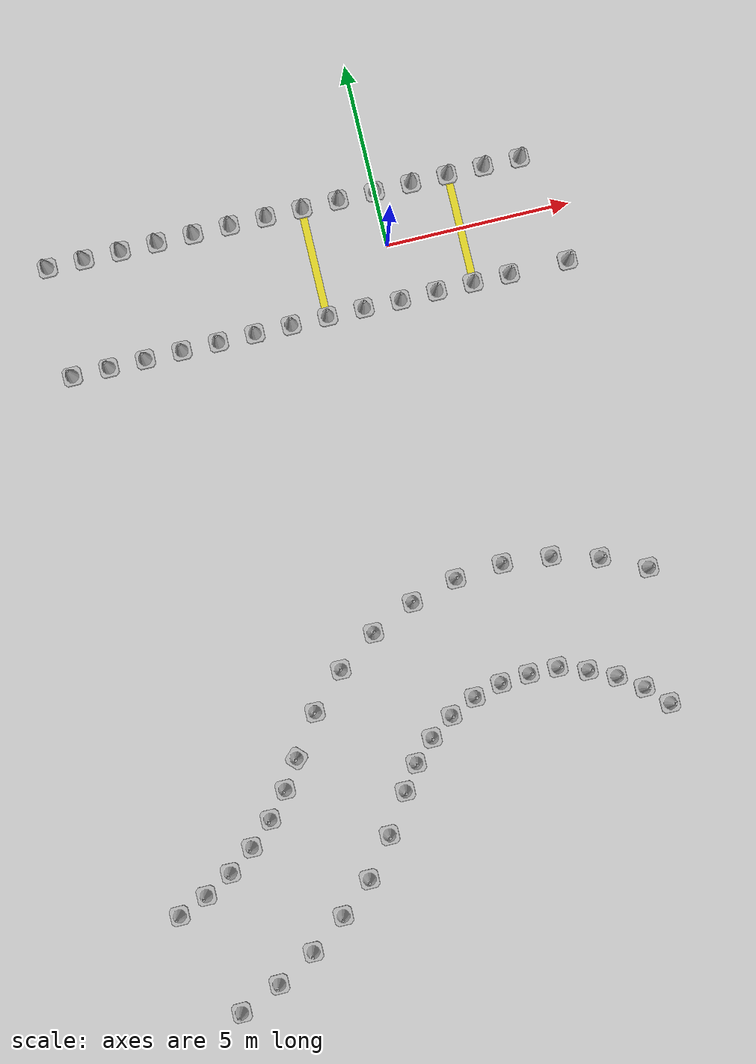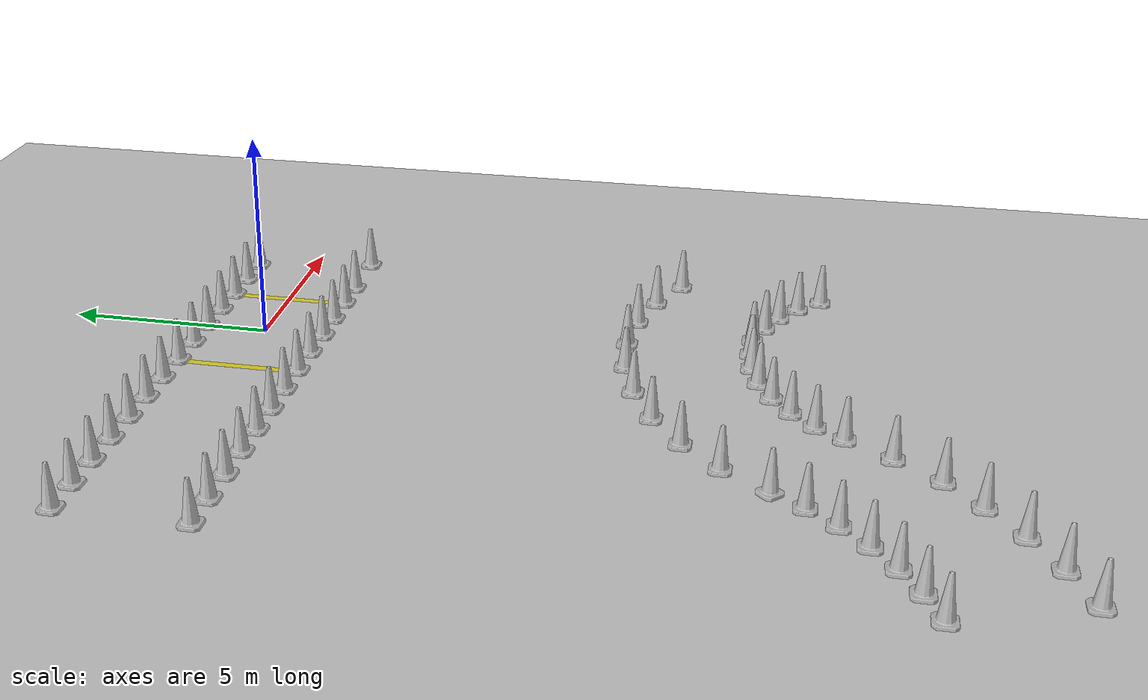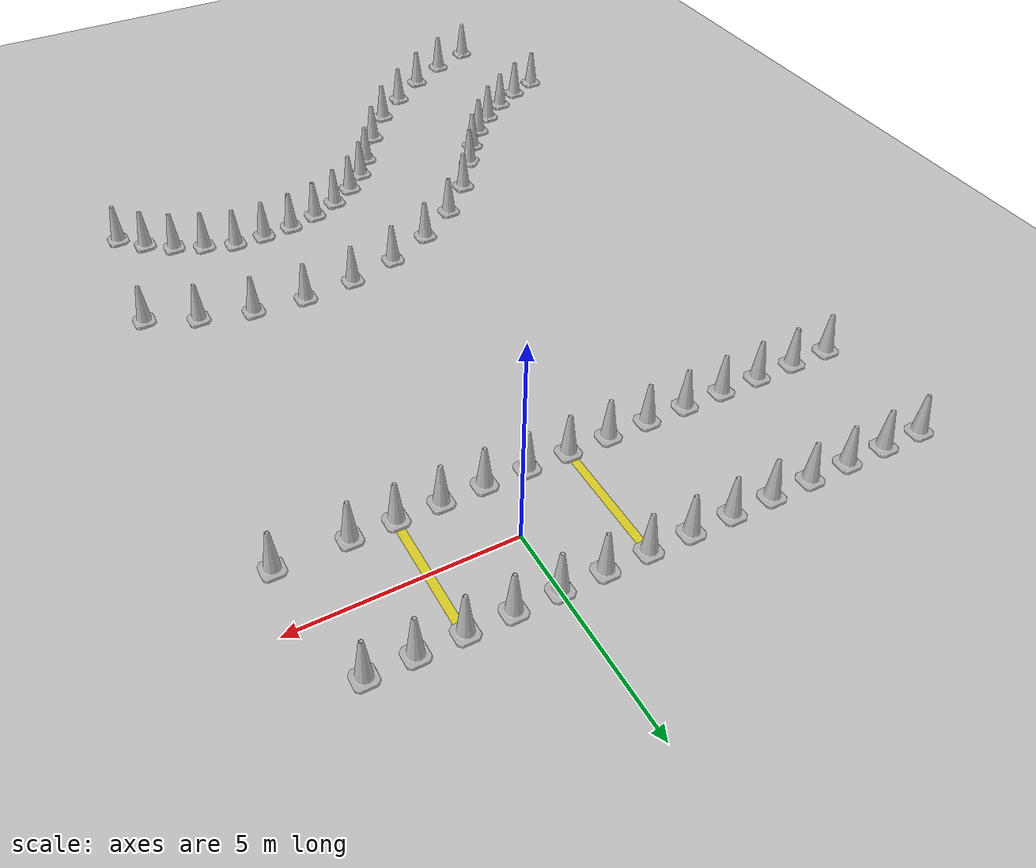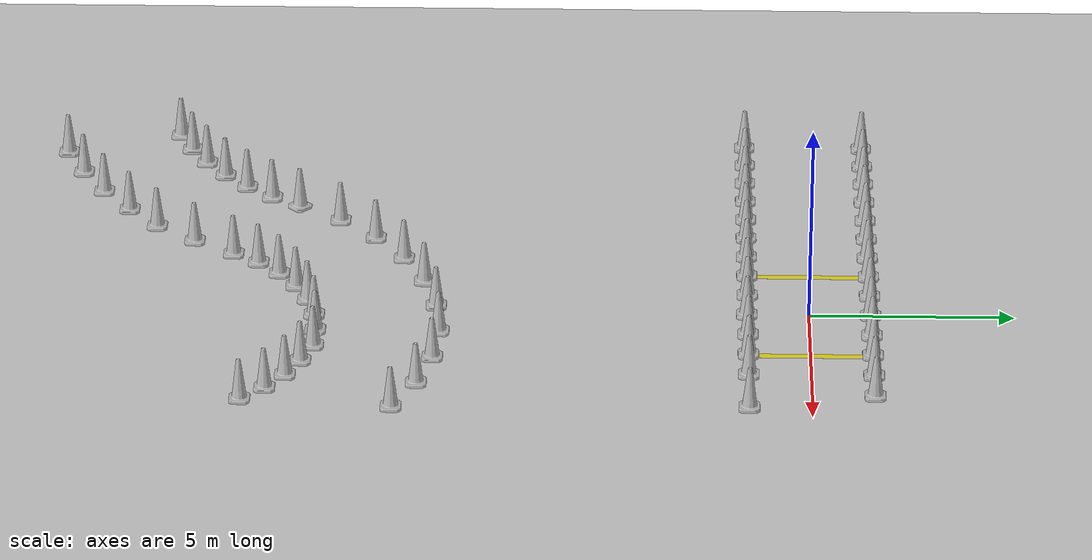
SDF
<sdf version="1.7">
 <world name="default">
  <model name="ground_plane">
   <static>1</static>
   <link name="link">
    <collision name="collision">
     <geometry><plane><normal>0 0 1</normal><size>100 100</size></plane></geometry>
     <surface><friction><ode><mu>100</mu><mu2>50</mu2></ode></friction></surface>
    </collision>
    <visual name="visual">
     <cast_shadows>0</cast_shadows>
     <geometry><plane><normal>0 0 1</normal><size>100 100</size></plane></geometry>
     <material>
      <script><uri>file://media/materials/scripts/gazebo.material</uri><name>Gazebo/Grey</name></script>
     </material>
    </visual>
   </link>
  </model>
  <model name="Construction Cone_clone_7">
   <link name="link">
    <collision name="collision">
     <geometry>
      <mesh><scale>10 10 10</scale><uri>model://construction_cone/meshes/construction_cone.dae</uri></mesh>
     </geometry>
    </collision>
    <visual name="visual">
     <geometry>
      <mesh><scale>10 10 10</scale><uri>model://construction_cone/meshes/construction_cone.dae</uri></mesh>
     </geometry>
    </visual>
    <inertial>
     <inertia><ixx>1</ixx><ixy>0</ixy><ixz>0</ixz><iyy>1</iyy><iyz>0</iyz><izz>1</izz></inertia>
     <mass>1</mass>
    </inertial>
   </link>
   <pose>4.6 -1.5 -0 -0 -0 -0</pose>
  </model>
  <model name="Construction Cone_clone_25">
   <link name="link">
    <collision name="collision">
     <geometry>
      <mesh><scale>10 10 10</scale><uri>model://construction_cone/meshes/construction_cone.dae</uri></mesh>
     </geometry>
    </collision>
    <visual name="visual">
     <geometry>
      <mesh><scale>10 10 10</scale><uri>model://construction_cone/meshes/construction_cone.dae</uri></mesh>
     </geometry>
    </visual>
    <inertial>
     <inertia><ixx>1</ixx><ixy>0</ixy><ixz>0</ixz><iyy>1</iyy><iyz>0</iyz><izz>1</izz></inertia>
     <mass>1</mass>
    </inertial>
   </link>
   <pose>4.73996 -9.99998 -0 -0 -0 -0.001118</pose>
  </model>
  <model name="Construction Cone_clone_27">
   <link name="link">
    <collision name="collision">
     <geometry>
      <mesh><scale>10 10 10</scale><uri>model://construction_cone/meshes/construction_cone.dae</uri></mesh>
     </geometry>
    </collision>
    <visual name="visual">
     <geometry>
      <mesh><scale>10 10 10</scale><uri>model://construction_cone/meshes/construction_cone.dae</uri></mesh>
     </geometry>
    </visual>
    <inertial>
     <inertia><ixx>1</ixx><ixy>0</ixy><ixz>0</ixz><iyy>1</iyy><iyz>0</iyz><izz>1</izz></inertia>
     <mass>1</mass>
    </inertial>
   </link>
   <pose>3.56 -9.45 -0 0 -1e-06 0</pose>
  </model>
  <model name="Construction Cone_clone_29">
   <link name="link">
    <collision name="collision">
     <geometry>
      <mesh><scale>10 10 10</scale><uri>model://construction_cone/meshes/construction_cone.dae</uri></mesh>
     </geometry>
    </collision>
    <visual name="visual">
     <geometry>
      <mesh><scale>10 10 10</scale><uri>model://construction_cone/meshes/construction_cone.dae</uri></mesh>
     </geometry>
    </visual>
    <inertial>
     <inertia><ixx>1</ixx><ixy>0</ixy><ixz>0</ixz><iyy>1</iyy><iyz>0</iyz><izz>1</izz></inertia>
     <mass>1</mass>
    </inertial>
   </link>
   <pose>2.29 -9.11 -0 -0 -0 -0</pose>
  </model>
  <model name="Construction Cone_clone_32">
   <link name="link">
    <collision name="collision">
     <geometry>
      <mesh><scale>10 10 10</scale><uri>model://construction_cone/meshes/construction_cone.dae</uri></mesh>
     </geometry>
    </collision>
    <visual name="visual">
     <geometry>
      <mesh><scale>10 10 10</scale><uri>model://construction_cone/meshes/construction_cone.dae</uri></mesh>
     </geometry>
    </visual>
    <inertial>
     <inertia><ixx>1</ixx><ixy>0</ixy><ixz>0</ixz><iyy>1</iyy><iyz>0</iyz><izz>1</izz></inertia>
     <mass>1</mass>
    </inertial>
   </link>
   <pose>-0.31 -9.11 -0 -0 -0 -0</pose>
  </model>
  <model name="Construction Cone_clone_33">
   <link name="link">
    <collision name="collision">
     <geometry>
      <mesh><scale>10 10 10</scale><uri>model://construction_cone/meshes/construction_cone.dae</uri></mesh>
     </geometry>
    </collision>
    <visual name="visual">
     <geometry>
      <mesh><scale>10 10 10</scale><uri>model://construction_cone/meshes/construction_cone.dae</uri></mesh>
     </geometry>
    </visual>
    <inertial>
     <inertia><ixx>1</ixx><ixy>0</ixy><ixz>0</ixz><iyy>1</iyy><iyz>0</iyz><izz>1</izz></inertia>
     <mass>1</mass>
    </inertial>
   </link>
   <pose>0.99 -9 -0 -0 -0 -0</pose>
  </model>
  <model name="Construction Cone_clone_35">
   <link name="link">
    <collision name="collision">
     <geometry>
      <mesh><scale>10 10 10</scale><uri>model://construction_cone/meshes/construction_cone.dae</uri></mesh>
     </geometry>
    </collision>
    <visual name="visual">
     <geometry>
      <mesh><scale>10 10 10</scale><uri>model://construction_cone/meshes/construction_cone.dae</uri></mesh>
     </geometry>
    </visual>
    <inertial>
     <inertia><ixx>1</ixx><ixy>0</ixy><ixz>0</ixz><iyy>1</iyy><iyz>0</iyz><izz>1</izz></inertia>
     <mass>1</mass>
    </inertial>
   </link>
   <pose>-1.57 -9.45 -0 -0 -0 -0</pose>
  </model>
  <model name="Construction Cone_clone_37">
   <link name="link">
    <collision name="collision">
     <geometry>
      <mesh><scale>10 10 10</scale><uri>model://construction_cone/meshes/construction_cone.dae</uri></mesh>
     </geometry>
    </collision>
    <visual name="visual">
     <geometry>
      <mesh><scale>10 10 10</scale><uri>model://construction_cone/meshes/construction_cone.dae</uri></mesh>
     </geometry>
    </visual>
    <inertial>
     <inertia><ixx>1</ixx><ixy>0</ixy><ixz>0</ixz><iyy>1</iyy><iyz>0</iyz><izz>1</izz></inertia>
     <mass>1</mass>
    </inertial>
   </link>
   <pose>-2.76 -10 -0 -0 -0 -0</pose>
  </model>
  <model name="Construction Cone_clone_38">
   <link name="link">
    <collision name="collision">
     <geometry>
      <mesh><scale>10 10 10</scale><uri>model://construction_cone/meshes/construction_cone.dae</uri></mesh>
     </geometry>
    </collision>
    <visual name="visual">
     <geometry>
      <mesh><scale>10 10 10</scale><uri>model://construction_cone/meshes/construction_cone.dae</uri></mesh>
     </geometry>
    </visual>
    <inertial>
     <inertia><ixx>1</ixx><ixy>0</ixy><ixz>0</ixz><iyy>1</iyy><iyz>0</iyz><izz>1</izz></inertia>
     <mass>1</mass>
    </inertial>
   </link>
   <pose>-4.75 -11.68 -9e-06 1e-06 -0 0</pose>
  </model>
  <model name="Construction Cone_clone_39">
   <link name="link">
    <collision name="collision">
     <geometry>
      <mesh><scale>10 10 10</scale><uri>model://construction_cone/meshes/construction_cone.dae</uri></mesh>
     </geometry>
    </collision>
    <visual name="visual">
     <geometry>
      <mesh><scale>10 10 10</scale><uri>model://construction_cone/meshes/construction_cone.dae</uri></mesh>
     </geometry>
    </visual>
    <inertial>
     <inertia><ixx>1</ixx><ixy>0</ixy><ixz>0</ixz><iyy>1</iyy><iyz>0</iyz><izz>1</izz></inertia>
     <mass>1</mass>
    </inertial>
   </link>
   <pose>-6.54 -14.15 -0 -0 -0 -0</pose>
  </model>
  <model name="Construction Cone_clone_50">
   <link name="link">
    <collision name="collision">
     <geometry>
      <mesh><scale>10 10 10</scale><uri>model://construction_cone/meshes/construction_cone.dae</uri></mesh>
     </geometry>
    </collision>
    <visual name="visual">
     <geometry>
      <mesh><scale>10 10 10</scale><uri>model://construction_cone/meshes/construction_cone.dae</uri></mesh>
     </geometry>
    </visual>
    <inertial>
     <inertia><ixx>1</ixx><ixy>0</ixy><ixz>0</ixz><iyy>1</iyy><iyz>0</iyz><izz>1</izz></inertia>
     <mass>1</mass>
    </inertial>
   </link>
   <pose>-3.83 -10.75 -0 -0 -0 -0</pose>
  </model>
  <model name="Construction Cone_clone_61">
   <link name="link">
    <collision name="collision">
     <geometry>
      <mesh><scale>10 10 10</scale><uri>model://construction_cone/meshes/construction_cone.dae</uri></mesh>
     </geometry>
    </collision>
    <visual name="visual">
     <geometry>
      <mesh><scale>10 10 10</scale><uri>model://construction_cone/meshes/construction_cone.dae</uri></mesh>
     </geometry>
    </visual>
    <inertial>
     <inertia><ixx>1</ixx><ixy>0</ixy><ixz>0</ixz><iyy>1</iyy><iyz>0</iyz><izz>1</izz></inertia>
     <mass>1</mass>
    </inertial>
   </link>
   <pose>-7.88 -15.27 -0 -0 -0 -0</pose>
  </model>
  <model name="Construction Cone_clone_62">
   <link name="link">
    <collision name="collision">
     <geometry>
      <mesh><scale>10 10 10</scale><uri>model://construction_cone/meshes/construction_cone.dae</uri></mesh>
     </geometry>
    </collision>
    <visual name="visual">
     <geometry>
      <mesh><scale>10 10 10</scale><uri>model://construction_cone/meshes/construction_cone.dae</uri></mesh>
     </geometry>
    </visual>
    <inertial>
     <inertia><ixx>1</ixx><ixy>0</ixy><ixz>0</ixz><iyy>1</iyy><iyz>0</iyz><izz>1</izz></inertia>
     <mass>1</mass>
    </inertial>
   </link>
   <pose>-7.18 -14.75 -0 -0 -0 -0</pose>
  </model>
  <model name="Construction Cone_clone_75">
   <link name="link">
    <collision name="collision">
     <geometry>
      <mesh><scale>10 10 10</scale><uri>model://construction_cone/meshes/construction_cone.dae</uri></mesh>
     </geometry>
    </collision>
    <visual name="visual">
     <geometry>
      <mesh><scale>10 10 10</scale><uri>model://construction_cone/meshes/construction_cone.dae</uri></mesh>
     </geometry>
    </visual>
    <inertial>
     <inertia><ixx>1</ixx><ixy>0</ixy><ixz>0</ixz><iyy>1</iyy><iyz>0</iyz><izz>1</izz></inertia>
     <mass>1</mass>
    </inertial>
   </link>
   <pose>-9.43 -16.05 -0 -0 -0 -0</pose>
  </model>
  <model name="Construction Cone_clone_76">
   <link name="link">
    <collision name="collision">
     <geometry>
      <mesh><scale>10 10 10</scale><uri>model://construction_cone/meshes/construction_cone.dae</uri></mesh>
     </geometry>
    </collision>
    <visual name="visual">
     <geometry>
      <mesh><scale>10 10 10</scale><uri>model://construction_cone/meshes/construction_cone.dae</uri></mesh>
     </geometry>
    </visual>
    <inertial>
     <inertia><ixx>1</ixx><ixy>0</ixy><ixz>0</ixz><iyy>1</iyy><iyz>0</iyz><izz>1</izz></inertia>
     <mass>1</mass>
    </inertial>
   </link>
   <pose>-8.63 -15.7 -0 -0 -0 -0</pose>
  </model>
  <model name="Construction Cone_clone_77">
   <link name="link">
    <collision name="collision">
     <geometry>
      <mesh><scale>10 10 10</scale><uri>model://construction_cone/meshes/construction_cone.dae</uri></mesh>
     </geometry>
    </collision>
    <visual name="visual">
     <geometry>
      <mesh><scale>10 10 10</scale><uri>model://construction_cone/meshes/construction_cone.dae</uri></mesh>
     </geometry>
    </visual>
    <inertial>
     <inertia><ixx>1</ixx><ixy>0</ixy><ixz>0</ixz><iyy>1</iyy><iyz>0</iyz><izz>1</izz></inertia>
     <mass>1</mass>
    </inertial>
   </link>
   <pose>-5.98 -13.48 -0 0 -0 0.005676</pose>
  </model>
  <model name="Construction Cone_clone_78">
   <link name="link">
    <collision name="collision">
     <geometry>
      <mesh><scale>10 10 10</scale><uri>model://construction_cone/meshes/construction_cone.dae</uri></mesh>
     </geometry>
    </collision>
    <visual name="visual">
     <geometry>
      <mesh><scale>10 10 10</scale><uri>model://construction_cone/meshes/construction_cone.dae</uri></mesh>
     </geometry>
    </visual>
    <inertial>
     <inertia><ixx>1</ixx><ixy>0</ixy><ixz>0</ixz><iyy>1</iyy><iyz>0</iyz><izz>1</izz></inertia>
     <mass>1</mass>
    </inertial>
   </link>
   <pose>-5.5 -12.75 -0 0 -0 0.778719</pose>
  </model>
  <model name="Construction Cone_clone_79">
   <link name="link">
    <collision name="collision">
     <geometry>
      <mesh><scale>10 10 10</scale><uri>model://construction_cone/meshes/construction_cone.dae</uri></mesh>
     </geometry>
    </collision>
    <visual name="visual">
     <geometry>
      <mesh><scale>10 10 10</scale><uri>model://construction_cone/meshes/construction_cone.dae</uri></mesh>
     </geometry>
    </visual>
    <inertial>
     <inertia><ixx>1</ixx><ixy>0</ixy><ixz>0</ixz><iyy>1</iyy><iyz>0</iyz><izz>1</izz></inertia>
     <mass>1</mass>
    </inertial>
   </link>
   <pose>1 -1.5 -0 -0 -0 -0</pose>
  </model>
  <model name="Construction Cone_clone_80">
   <link name="link">
    <collision name="collision">
     <geometry>
      <mesh><scale>10 10 10</scale><uri>model://construction_cone/meshes/construction_cone.dae</uri></mesh>
     </geometry>
    </collision>
    <visual name="visual">
     <geometry>
      <mesh><scale>10 10 10</scale><uri>model://construction_cone/meshes/construction_cone.dae</uri></mesh>
     </geometry>
    </visual>
    <inertial>
     <inertia><ixx>1</ixx><ixy>0</ixy><ixz>0</ixz><iyy>1</iyy><iyz>0</iyz><izz>1</izz></inertia>
     <mass>1</mass>
    </inertial>
   </link>
   <pose>-9 -1.5 -9e-06 1e-06 -0 0</pose>
  </model>
  <model name="Construction Cone_clone_82">
   <link name="link">
    <collision name="collision">
     <geometry>
      <mesh><scale>10 10 10</scale><uri>model://construction_cone/meshes/construction_cone.dae</uri></mesh>
     </geometry>
    </collision>
    <visual name="visual">
     <geometry>
      <mesh><scale>10 10 10</scale><uri>model://construction_cone/meshes/construction_cone.dae</uri></mesh>
     </geometry>
    </visual>
    <inertial>
     <inertia><ixx>1</ixx><ixy>0</ixy><ixz>0</ixz><iyy>1</iyy><iyz>0</iyz><izz>1</izz></inertia>
     <mass>1</mass>
    </inertial>
   </link>
   <pose>1.99969 -1.50035 -0 0 -0 0.002407</pose>
  </model>
  <model name="Construction Cone_clone_83">
   <link name="link">
    <collision name="collision">
     <geometry>
      <mesh><scale>10 10 10</scale><uri>model://construction_cone/meshes/construction_cone.dae</uri></mesh>
     </geometry>
    </collision>
    <visual name="visual">
     <geometry>
      <mesh><scale>10 10 10</scale><uri>model://construction_cone/meshes/construction_cone.dae</uri></mesh>
     </geometry>
    </visual>
    <inertial>
     <inertia><ixx>1</ixx><ixy>0</ixy><ixz>0</ixz><iyy>1</iyy><iyz>0</iyz><izz>1</izz></inertia>
     <mass>1</mass>
    </inertial>
   </link>
   <pose>2.99996 -1.49992 -0 -0 -0 -0.001846</pose>
  </model>
  <model name="Construction Cone_clone_84">
   <link name="link">
    <collision name="collision">
     <geometry>
      <mesh><scale>10 10 10</scale><uri>model://construction_cone/meshes/construction_cone.dae</uri></mesh>
     </geometry>
    </collision>
    <visual name="visual">
     <geometry>
      <mesh><scale>10 10 10</scale><uri>model://construction_cone/meshes/construction_cone.dae</uri></mesh>
     </geometry>
    </visual>
    <inertial>
     <inertia><ixx>1</ixx><ixy>0</ixy><ixz>0</ixz><iyy>1</iyy><iyz>0</iyz><izz>1</izz></inertia>
     <mass>1</mass>
    </inertial>
   </link>
   <pose>-8 -1.5 -0 -0 -0 -0</pose>
  </model>
  <model name="Construction Cone_clone_85">
   <link name="link">
    <collision name="collision">
     <geometry>
      <mesh><scale>10 10 10</scale><uri>model://construction_cone/meshes/construction_cone.dae</uri></mesh>
     </geometry>
    </collision>
    <visual name="visual">
     <geometry>
      <mesh><scale>10 10 10</scale><uri>model://construction_cone/meshes/construction_cone.dae</uri></mesh>
     </geometry>
    </visual>
    <inertial>
     <inertia><ixx>1</ixx><ixy>0</ixy><ixz>0</ixz><iyy>1</iyy><iyz>0</iyz><izz>1</izz></inertia>
     <mass>1</mass>
    </inertial>
   </link>
   <pose>-3 -1.5 -9e-06 1e-06 -0 0</pose>
  </model>
  <model name="Construction Cone_clone_86">
   <link name="link">
    <collision name="collision">
     <geometry>
      <mesh><scale>10 10 10</scale><uri>model://construction_cone/meshes/construction_cone.dae</uri></mesh>
     </geometry>
    </collision>
    <visual name="visual">
     <geometry>
      <mesh><scale>10 10 10</scale><uri>model://construction_cone/meshes/construction_cone.dae</uri></mesh>
     </geometry>
    </visual>
    <inertial>
     <inertia><ixx>1</ixx><ixy>0</ixy><ixz>0</ixz><iyy>1</iyy><iyz>0</iyz><izz>1</izz></inertia>
     <mass>1</mass>
    </inertial>
   </link>
   <pose>0.000477 -1.51731 -0 -0 -0 -0.000491</pose>
  </model>
  <model name="Construction Cone_clone_87">
   <link name="link">
    <collision name="collision">
     <geometry>
      <mesh><scale>10 10 10</scale><uri>model://construction_cone/meshes/construction_cone.dae</uri></mesh>
     </geometry>
    </collision>
    <visual name="visual">
     <geometry>
      <mesh><scale>10 10 10</scale><uri>model://construction_cone/meshes/construction_cone.dae</uri></mesh>
     </geometry>
    </visual>
    <inertial>
     <inertia><ixx>1</ixx><ixy>0</ixy><ixz>0</ixz><iyy>1</iyy><iyz>0</iyz><izz>1</izz></inertia>
     <mass>1</mass>
    </inertial>
   </link>
   <pose>-2 -1.5 -0 -0 -0 -0</pose>
  </model>
  <model name="Construction Cone_clone_88">
   <link name="link">
    <collision name="collision">
     <geometry>
      <mesh><scale>10 10 10</scale><uri>model://construction_cone/meshes/construction_cone.dae</uri></mesh>
     </geometry>
    </collision>
    <visual name="visual">
     <geometry>
      <mesh><scale>10 10 10</scale><uri>model://construction_cone/meshes/construction_cone.dae</uri></mesh>
     </geometry>
    </visual>
    <inertial>
     <inertia><ixx>1</ixx><ixy>0</ixy><ixz>0</ixz><iyy>1</iyy><iyz>0</iyz><izz>1</izz></inertia>
     <mass>1</mass>
    </inertial>
   </link>
   <pose>-7.00024 -1.49975 -0 -0 -0 -0.009773</pose>
  </model>
  <model name="Construction Cone_clone_89">
   <link name="link">
    <collision name="collision">
     <geometry>
      <mesh><scale>10 10 10</scale><uri>model://construction_cone/meshes/construction_cone.dae</uri></mesh>
     </geometry>
    </collision>
    <visual name="visual">
     <geometry>
      <mesh><scale>10 10 10</scale><uri>model://construction_cone/meshes/construction_cone.dae</uri></mesh>
     </geometry>
    </visual>
    <inertial>
     <inertia><ixx>1</ixx><ixy>0</ixy><ixz>0</ixz><iyy>1</iyy><iyz>0</iyz><izz>1</izz></inertia>
     <mass>1</mass>
    </inertial>
   </link>
   <pose>-4 -1.5 -0 -0 -0 -0</pose>
  </model>
  <model name="Construction Cone_clone_90">
   <link name="link">
    <collision name="collision">
     <geometry>
      <mesh><scale>10 10 10</scale><uri>model://construction_cone/meshes/construction_cone.dae</uri></mesh>
     </geometry>
    </collision>
    <visual name="visual">
     <geometry>
      <mesh><scale>10 10 10</scale><uri>model://construction_cone/meshes/construction_cone.dae</uri></mesh>
     </geometry>
    </visual>
    <inertial>
     <inertia><ixx>1</ixx><ixy>0</ixy><ixz>0</ixz><iyy>1</iyy><iyz>0</iyz><izz>1</izz></inertia>
     <mass>1</mass>
    </inertial>
   </link>
   <pose>-4.99999 -1.50001 -0 1e-06 0 5.3e-05</pose>
  </model>
  <model name="Construction Cone_clone_91">
   <link name="link">
    <collision name="collision">
     <geometry>
      <mesh><scale>10 10 10</scale><uri>model://construction_cone/meshes/construction_cone.dae</uri></mesh>
     </geometry>
    </collision>
    <visual name="visual">
     <geometry>
      <mesh><scale>10 10 10</scale><uri>model://construction_cone/meshes/construction_cone.dae</uri></mesh>
     </geometry>
    </visual>
    <inertial>
     <inertia><ixx>1</ixx><ixy>0</ixy><ixz>0</ixz><iyy>1</iyy><iyz>0</iyz><izz>1</izz></inertia>
     <mass>1</mass>
    </inertial>
   </link>
   <pose>-6 -1.5 -0 0 -0 9e-06</pose>
  </model>
  <model name="Construction Cone_clone_92">
   <link name="link">
    <collision name="collision">
     <geometry>
      <mesh><scale>10 10 10</scale><uri>model://construction_cone/meshes/construction_cone.dae</uri></mesh>
     </geometry>
    </collision>
    <visual name="visual">
     <geometry>
      <mesh><scale>10 10 10</scale><uri>model://construction_cone/meshes/construction_cone.dae</uri></mesh>
     </geometry>
    </visual>
    <inertial>
     <inertia><ixx>1</ixx><ixy>0</ixy><ixz>0</ixz><iyy>1</iyy><iyz>0</iyz><izz>1</izz></inertia>
     <mass>1</mass>
    </inertial>
   </link>
   <pose>-1.00011 -1.49999 -0 0 -0 0.000433</pose>
  </model>
  <model name="Construction Cone_clone_124">
   <link name="link">
    <collision name="collision">
     <geometry>
      <mesh><scale>10 10 10</scale><uri>model://construction_cone/meshes/construction_cone.dae</uri></mesh>
     </geometry>
    </collision>
    <visual name="visual">
     <geometry>
      <mesh><scale>10 10 10</scale><uri>model://construction_cone/meshes/construction_cone.dae</uri></mesh>
     </geometry>
    </visual>
    <inertial>
     <inertia><ixx>1</ixx><ixy>0</ixy><ixz>0</ixz><iyy>1</iyy><iyz>0</iyz><izz>1</izz></inertia>
     <mass>1</mass>
    </inertial>
   </link>
   <pose>-2.46 -13.6 -0 -0 -0 -0</pose>
  </model>
  <model name="Construction Cone_clone_127">
   <link name="link">
    <collision name="collision">
     <geometry>
      <mesh><scale>10 10 10</scale><uri>model://construction_cone/meshes/construction_cone.dae</uri></mesh>
     </geometry>
    </collision>
    <visual name="visual">
     <geometry>
      <mesh><scale>10 10 10</scale><uri>model://construction_cone/meshes/construction_cone.dae</uri></mesh>
     </geometry>
    </visual>
    <inertial>
     <inertia><ixx>1</ixx><ixy>0</ixy><ixz>0</ixz><iyy>1</iyy><iyz>0</iyz><izz>1</izz></inertia>
     <mass>1</mass>
    </inertial>
   </link>
   <pose>0.21 -12.07 -0 -0 -0 -0</pose>
  </model>
  <model name="Construction Cone_clone_128">
   <link name="link">
    <collision name="collision">
     <geometry>
      <mesh><scale>10 10 10</scale><uri>model://construction_cone/meshes/construction_cone.dae</uri></mesh>
     </geometry>
    </collision>
    <visual name="visual">
     <geometry>
      <mesh><scale>10 10 10</scale><uri>model://construction_cone/meshes/construction_cone.dae</uri></mesh>
     </geometry>
    </visual>
    <inertial>
     <inertia><ixx>1</ixx><ixy>0</ixy><ixz>0</ixz><iyy>1</iyy><iyz>0</iyz><izz>1</izz></inertia>
     <mass>1</mass>
    </inertial>
   </link>
   <pose>3.88 -13.05 -0 -1e-06 -1e-06 0</pose>
  </model>
  <model name="Construction Cone_clone_129">
   <link name="link">
    <collision name="collision">
     <geometry>
      <mesh><scale>10 10 10</scale><uri>model://construction_cone/meshes/construction_cone.dae</uri></mesh>
     </geometry>
    </collision>
    <visual name="visual">
     <geometry>
      <mesh><scale>10 10 10</scale><uri>model://construction_cone/meshes/construction_cone.dae</uri></mesh>
     </geometry>
    </visual>
    <inertial>
     <inertia><ixx>1</ixx><ixy>0</ixy><ixz>0</ixz><iyy>1</iyy><iyz>0</iyz><izz>1</izz></inertia>
     <mass>1</mass>
    </inertial>
   </link>
   <pose>3.24 -12.6 -0 -0 -0 -0</pose>
  </model>
  <model name="Construction Cone_clone_133">
   <link name="link">
    <collision name="collision">
     <geometry>
      <mesh><scale>10 10 10</scale><uri>model://construction_cone/meshes/construction_cone.dae</uri></mesh>
     </geometry>
    </collision>
    <visual name="visual">
     <geometry>
      <mesh><scale>10 10 10</scale><uri>model://construction_cone/meshes/construction_cone.dae</uri></mesh>
     </geometry>
    </visual>
    <inertial>
     <inertia><ixx>1</ixx><ixy>0</ixy><ixz>0</ixz><iyy>1</iyy><iyz>0</iyz><izz>1</izz></inertia>
     <mass>1</mass>
    </inertial>
   </link>
   <pose>-2.91 -14.25 -0 -0 -0 -0</pose>
  </model>
  <model name="Construction Cone_clone_134">
   <link name="link">
    <collision name="collision">
     <geometry>
      <mesh><scale>10 10 10</scale><uri>model://construction_cone/meshes/construction_cone.dae</uri></mesh>
     </geometry>
    </collision>
    <visual name="visual">
     <geometry>
      <mesh><scale>10 10 10</scale><uri>model://construction_cone/meshes/construction_cone.dae</uri></mesh>
     </geometry>
    </visual>
    <inertial>
     <inertia><ixx>1</ixx><ixy>0</ixy><ixz>0</ixz><iyy>1</iyy><iyz>0</iyz><izz>1</izz></inertia>
     <mass>1</mass>
    </inertial>
   </link>
   <pose>-0.55 -12.27 -0 -0 -0 -0</pose>
  </model>
  <model name="Construction Cone_clone_135">
   <link name="link">
    <collision name="collision">
     <geometry>
      <mesh><scale>10 10 10</scale><uri>model://construction_cone/meshes/construction_cone.dae</uri></mesh>
     </geometry>
    </collision>
    <visual name="visual">
     <geometry>
      <mesh><scale>10 10 10</scale><uri>model://construction_cone/meshes/construction_cone.dae</uri></mesh>
     </geometry>
    </visual>
    <inertial>
     <inertia><ixx>1</ixx><ixy>0</ixy><ixz>0</ixz><iyy>1</iyy><iyz>0</iyz><izz>1</izz></inertia>
     <mass>1</mass>
    </inertial>
   </link>
   <pose>0.99 -12 -0 -0 -0 -0</pose>
  </model>
  <model name="Construction Cone_clone_136">
   <link name="link">
    <collision name="collision">
     <geometry>
      <mesh><scale>10 10 10</scale><uri>model://construction_cone/meshes/construction_cone.dae</uri></mesh>
     </geometry>
    </collision>
    <visual name="visual">
     <geometry>
      <mesh><scale>10 10 10</scale><uri>model://construction_cone/meshes/construction_cone.dae</uri></mesh>
     </geometry>
    </visual>
    <inertial>
     <inertia><ixx>1</ixx><ixy>0</ixy><ixz>0</ixz><iyy>1</iyy><iyz>0</iyz><izz>1</izz></inertia>
     <mass>1</mass>
    </inertial>
   </link>
   <pose>2.53 -12.27 -0 -0 -0 -0</pose>
  </model>
  <model name="Construction Cone_clone_137">
   <link name="link">
    <collision name="collision">
     <geometry>
      <mesh><scale>10 10 10</scale><uri>model://construction_cone/meshes/construction_cone.dae</uri></mesh>
     </geometry>
    </collision>
    <visual name="visual">
     <geometry>
      <mesh><scale>10 10 10</scale><uri>model://construction_cone/meshes/construction_cone.dae</uri></mesh>
     </geometry>
    </visual>
    <inertial>
     <inertia><ixx>1</ixx><ixy>0</ixy><ixz>0</ixz><iyy>1</iyy><iyz>0</iyz><izz>1</izz></inertia>
     <mass>1</mass>
    </inertial>
   </link>
   <pose>4.44 -13.61 -0 -0 -0 -0</pose>
  </model>
  <model name="Construction Cone_clone_140">
   <link name="link">
    <collision name="collision">
     <geometry>
      <mesh><scale>10 10 10</scale><uri>model://construction_cone/meshes/construction_cone.dae</uri></mesh>
     </geometry>
    </collision>
    <visual name="visual">
     <geometry>
      <mesh><scale>10 10 10</scale><uri>model://construction_cone/meshes/construction_cone.dae</uri></mesh>
     </geometry>
    </visual>
    <inertial>
     <inertia><ixx>1</ixx><ixy>0</ixy><ixz>0</ixz><iyy>1</iyy><iyz>0</iyz><izz>1</izz></inertia>
     <mass>1</mass>
    </inertial>
   </link>
   <pose>-1.9 -13.05 -0 0 -1e-06 0</pose>
  </model>
  <model name="Construction Cone_clone_141">
   <link name="link">
    <collision name="collision">
     <geometry>
      <mesh><scale>10 10 10</scale><uri>model://construction_cone/meshes/construction_cone.dae</uri></mesh>
     </geometry>
    </collision>
    <visual name="visual">
     <geometry>
      <mesh><scale>10 10 10</scale><uri>model://construction_cone/meshes/construction_cone.dae</uri></mesh>
     </geometry>
    </visual>
    <inertial>
     <inertia><ixx>1</ixx><ixy>0</ixy><ixz>0</ixz><iyy>1</iyy><iyz>0</iyz><izz>1</izz></inertia>
     <mass>1</mass>
    </inertial>
   </link>
   <pose>-1.26 -12.6 -0 -0 -0 -0</pose>
  </model>
  <model name="Construction Cone_clone_142">
   <link name="link">
    <collision name="collision">
     <geometry>
      <mesh><scale>10 10 10</scale><uri>model://construction_cone/meshes/construction_cone.dae</uri></mesh>
     </geometry>
    </collision>
    <visual name="visual">
     <geometry>
      <mesh><scale>10 10 10</scale><uri>model://construction_cone/meshes/construction_cone.dae</uri></mesh>
     </geometry>
    </visual>
    <inertial>
     <inertia><ixx>1</ixx><ixy>0</ixy><ixz>0</ixz><iyy>1</iyy><iyz>0</iyz><izz>1</izz></inertia>
     <mass>1</mass>
    </inertial>
   </link>
   <pose>1.77 -12.007 -0 -0 -0 -0</pose>
  </model>
  <model name="Construction Cone_clone_166">
   <link name="link">
    <collision name="collision">
     <geometry>
      <mesh><scale>10 10 10</scale><uri>model://construction_cone/meshes/construction_cone.dae</uri></mesh>
     </geometry>
    </collision>
    <visual name="visual">
     <geometry>
      <mesh><scale>10 10 10</scale><uri>model://construction_cone/meshes/construction_cone.dae</uri></mesh>
     </geometry>
    </visual>
    <inertial>
     <inertia><ixx>1</ixx><ixy>0</ixy><ixz>0</ixz><iyy>1</iyy><iyz>0</iyz><izz>1</izz></inertia>
     <mass>1</mass>
    </inertial>
   </link>
   <pose>-8.41 -18.87 -0 -0 -0 -0</pose>
  </model>
  <model name="Construction Cone_clone_167">
   <link name="link">
    <collision name="collision">
     <geometry>
      <mesh><scale>10 10 10</scale><uri>model://construction_cone/meshes/construction_cone.dae</uri></mesh>
     </geometry>
    </collision>
    <visual name="visual">
     <geometry>
      <mesh><scale>10 10 10</scale><uri>model://construction_cone/meshes/construction_cone.dae</uri></mesh>
     </geometry>
    </visual>
    <inertial>
     <inertia><ixx>1</ixx><ixy>0</ixy><ixz>0</ixz><iyy>1</iyy><iyz>0</iyz><izz>1</izz></inertia>
     <mass>1</mass>
    </inertial>
   </link>
   <pose>-7.29 -18.38 -0 -0 -0 -0</pose>
  </model>
  <model name="Construction Cone_clone_168">
   <link name="link">
    <collision name="collision">
     <geometry>
      <mesh><scale>10 10 10</scale><uri>model://construction_cone/meshes/construction_cone.dae</uri></mesh>
     </geometry>
    </collision>
    <visual name="visual">
     <geometry>
      <mesh><scale>10 10 10</scale><uri>model://construction_cone/meshes/construction_cone.dae</uri></mesh>
     </geometry>
    </visual>
    <inertial>
     <inertia><ixx>1</ixx><ixy>0</ixy><ixz>0</ixz><iyy>1</iyy><iyz>0</iyz><izz>1</izz></inertia>
     <mass>1</mass>
    </inertial>
   </link>
   <pose>-6.23 -17.77 -0 -0 -0 -0</pose>
  </model>
  <model name="Construction Cone_clone_169">
   <link name="link">
    <collision name="collision">
     <geometry>
      <mesh><scale>10 10 10</scale><uri>model://construction_cone/meshes/construction_cone.dae</uri></mesh>
     </geometry>
    </collision>
    <visual name="visual">
     <geometry>
      <mesh><scale>10 10 10</scale><uri>model://construction_cone/meshes/construction_cone.dae</uri></mesh>
     </geometry>
    </visual>
    <inertial>
     <inertia><ixx>1</ixx><ixy>0</ixy><ixz>0</ixz><iyy>1</iyy><iyz>0</iyz><izz>1</izz></inertia>
     <mass>1</mass>
    </inertial>
   </link>
   <pose>-5.25 -17.04 -0 -0 -0 -0</pose>
  </model>
  <model name="Construction Cone_clone_171">
   <link name="link">
    <collision name="collision">
     <geometry>
      <mesh><scale>10 10 10</scale><uri>model://construction_cone/meshes/construction_cone.dae</uri></mesh>
     </geometry>
    </collision>
    <visual name="visual">
     <geometry>
      <mesh><scale>10 10 10</scale><uri>model://construction_cone/meshes/construction_cone.dae</uri></mesh>
     </geometry>
    </visual>
    <inertial>
     <inertia><ixx>1</ixx><ixy>0</ixy><ixz>0</ixz><iyy>1</iyy><iyz>0</iyz><izz>1</izz></inertia>
     <mass>1</mass>
    </inertial>
   </link>
   <pose>-3.58 -15.27 -0 -0 -0 -0</pose>
  </model>
  <model name="Construction Cone_clone_172">
   <link name="link">
    <collision name="collision">
     <geometry>
      <mesh><scale>10 10 10</scale><uri>model://construction_cone/meshes/construction_cone.dae</uri></mesh>
     </geometry>
    </collision>
    <visual name="visual">
     <geometry>
      <mesh><scale>10 10 10</scale><uri>model://construction_cone/meshes/construction_cone.dae</uri></mesh>
     </geometry>
    </visual>
    <inertial>
     <inertia><ixx>1</ixx><ixy>0</ixy><ixz>0</ixz><iyy>1</iyy><iyz>0</iyz><izz>1</izz></inertia>
     <mass>1</mass>
    </inertial>
   </link>
   <pose>-4.36 -16.27 -0 -0 -0 -0</pose>
  </model>
  <model name="Construction Cone_clone_173">
   <link name="link">
    <collision name="collision">
     <geometry>
      <mesh><scale>10 10 10</scale><uri>model://construction_cone/meshes/construction_cone.dae</uri></mesh>
     </geometry>
    </collision>
    <visual name="visual">
     <geometry>
      <mesh><scale>10 10 10</scale><uri>model://construction_cone/meshes/construction_cone.dae</uri></mesh>
     </geometry>
    </visual>
    <inertial>
     <inertia><ixx>1</ixx><ixy>0</ixy><ixz>0</ixz><iyy>1</iyy><iyz>0</iyz><izz>1</izz></inertia>
     <mass>1</mass>
    </inertial>
   </link>
   <pose>4 1.5 -0 -0 -0 -0</pose>
  </model>
  <model name="Construction Cone_clone_174">
   <link name="link">
    <collision name="collision">
     <geometry>
      <mesh><scale>10 10 10</scale><uri>model://construction_cone/meshes/construction_cone.dae</uri></mesh>
     </geometry>
    </collision>
    <visual name="visual">
     <geometry>
      <mesh><scale>10 10 10</scale><uri>model://construction_cone/meshes/construction_cone.dae</uri></mesh>
     </geometry>
    </visual>
    <inertial>
     <inertia><ixx>1</ixx><ixy>0</ixy><ixz>0</ixz><iyy>1</iyy><iyz>0</iyz><izz>1</izz></inertia>
     <mass>1</mass>
    </inertial>
   </link>
   <pose>-6 1.5 -0 -0 -0 -0</pose>
  </model>
  <model name="Construction Cone_clone_175">
   <link name="link">
    <collision name="collision">
     <geometry>
      <mesh><scale>10 10 10</scale><uri>model://construction_cone/meshes/construction_cone.dae</uri></mesh>
     </geometry>
    </collision>
    <visual name="visual">
     <geometry>
      <mesh><scale>10 10 10</scale><uri>model://construction_cone/meshes/construction_cone.dae</uri></mesh>
     </geometry>
    </visual>
    <inertial>
     <inertia><ixx>1</ixx><ixy>0</ixy><ixz>0</ixz><iyy>1</iyy><iyz>0</iyz><izz>1</izz></inertia>
     <mass>1</mass>
    </inertial>
   </link>
   <pose>-8 1.5 -0 -0 -0 -0</pose>
  </model>
  <model name="Construction Cone_clone_176">
   <link name="link">
    <collision name="collision">
     <geometry>
      <mesh><scale>10 10 10</scale><uri>model://construction_cone/meshes/construction_cone.dae</uri></mesh>
     </geometry>
    </collision>
    <visual name="visual">
     <geometry>
      <mesh><scale>10 10 10</scale><uri>model://construction_cone/meshes/construction_cone.dae</uri></mesh>
     </geometry>
    </visual>
    <inertial>
     <inertia><ixx>1</ixx><ixy>0</ixy><ixz>0</ixz><iyy>1</iyy><iyz>0</iyz><izz>1</izz></inertia>
     <mass>1</mass>
    </inertial>
   </link>
   <pose>-5 1.5 -1e-05 -1e-06 -0 -0</pose>
  </model>
  <model name="Construction Cone_clone_177">
   <link name="link">
    <collision name="collision">
     <geometry>
      <mesh><scale>10 10 10</scale><uri>model://construction_cone/meshes/construction_cone.dae</uri></mesh>
     </geometry>
    </collision>
    <visual name="visual">
     <geometry>
      <mesh><scale>10 10 10</scale><uri>model://construction_cone/meshes/construction_cone.dae</uri></mesh>
     </geometry>
    </visual>
    <inertial>
     <inertia><ixx>1</ixx><ixy>0</ixy><ixz>0</ixz><iyy>1</iyy><iyz>0</iyz><izz>1</izz></inertia>
     <mass>1</mass>
    </inertial>
   </link>
   <pose>-4 1.5 -0 -0 -0 -0</pose>
  </model>
  <model name="Construction Cone_clone_178">
   <link name="link">
    <collision name="collision">
     <geometry>
      <mesh><scale>10 10 10</scale><uri>model://construction_cone/meshes/construction_cone.dae</uri></mesh>
     </geometry>
    </collision>
    <visual name="visual">
     <geometry>
      <mesh><scale>10 10 10</scale><uri>model://construction_cone/meshes/construction_cone.dae</uri></mesh>
     </geometry>
    </visual>
    <inertial>
     <inertia><ixx>1</ixx><ixy>0</ixy><ixz>0</ixz><iyy>1</iyy><iyz>0</iyz><izz>1</izz></inertia>
     <mass>1</mass>
    </inertial>
   </link>
   <pose>-2 1.5 -1e-05 -1e-06 -0 -0</pose>
  </model>
  <model name="Construction Cone_clone_179">
   <link name="link">
    <collision name="collision">
     <geometry>
      <mesh><scale>10 10 10</scale><uri>model://construction_cone/meshes/construction_cone.dae</uri></mesh>
     </geometry>
    </collision>
    <visual name="visual">
     <geometry>
      <mesh><scale>10 10 10</scale><uri>model://construction_cone/meshes/construction_cone.dae</uri></mesh>
     </geometry>
    </visual>
    <inertial>
     <inertia><ixx>1</ixx><ixy>0</ixy><ixz>0</ixz><iyy>1</iyy><iyz>0</iyz><izz>1</izz></inertia>
     <mass>1</mass>
    </inertial>
   </link>
   <pose>-3 1.5 -0 -0 -0 -0</pose>
  </model>
  <model name="Construction Cone_clone_180">
   <link name="link">
    <collision name="collision">
     <geometry>
      <mesh><scale>10 10 10</scale><uri>model://construction_cone/meshes/construction_cone.dae</uri></mesh>
     </geometry>
    </collision>
    <visual name="visual">
     <geometry>
      <mesh><scale>10 10 10</scale><uri>model://construction_cone/meshes/construction_cone.dae</uri></mesh>
     </geometry>
    </visual>
    <inertial>
     <inertia><ixx>1</ixx><ixy>0</ixy><ixz>0</ixz><iyy>1</iyy><iyz>0</iyz><izz>1</izz></inertia>
     <mass>1</mass>
    </inertial>
   </link>
   <pose>-1 1.5 -0 -0 -0 -0</pose>
  </model>
  <model name="Construction Cone_clone_181">
   <link name="link">
    <collision name="collision">
     <geometry>
      <mesh><scale>10 10 10</scale><uri>model://construction_cone/meshes/construction_cone.dae</uri></mesh>
     </geometry>
    </collision>
    <visual name="visual">
     <geometry>
      <mesh><scale>10 10 10</scale><uri>model://construction_cone/meshes/construction_cone.dae</uri></mesh>
     </geometry>
    </visual>
    <inertial>
     <inertia><ixx>1</ixx><ixy>0</ixy><ixz>0</ixz><iyy>1</iyy><iyz>0</iyz><izz>1</izz></inertia>
     <mass>1</mass>
    </inertial>
   </link>
   <pose>0 1.5 -0 -0 -0 -0</pose>
  </model>
  <model name="Construction Cone_clone_182">
   <link name="link">
    <collision name="collision">
     <geometry>
      <mesh><scale>10 10 10</scale><uri>model://construction_cone/meshes/construction_cone.dae</uri></mesh>
     </geometry>
    </collision>
    <visual name="visual">
     <geometry>
      <mesh><scale>10 10 10</scale><uri>model://construction_cone/meshes/construction_cone.dae</uri></mesh>
     </geometry>
    </visual>
    <inertial>
     <inertia><ixx>1</ixx><ixy>0</ixy><ixz>0</ixz><iyy>1</iyy><iyz>0</iyz><izz>1</izz></inertia>
     <mass>1</mass>
    </inertial>
   </link>
   <pose>2 1.5 -0 -0 -0 -0</pose>
  </model>
  <model name="Construction Cone_clone_183">
   <link name="link">
    <collision name="collision">
     <geometry>
      <mesh><scale>10 10 10</scale><uri>model://construction_cone/meshes/construction_cone.dae</uri></mesh>
     </geometry>
    </collision>
    <visual name="visual">
     <geometry>
      <mesh><scale>10 10 10</scale><uri>model://construction_cone/meshes/construction_cone.dae</uri></mesh>
     </geometry>
    </visual>
    <inertial>
     <inertia><ixx>1</ixx><ixy>0</ixy><ixz>0</ixz><iyy>1</iyy><iyz>0</iyz><izz>1</izz></inertia>
     <mass>1</mass>
    </inertial>
   </link>
   <pose>3 1.5 -0 -0 -0 -0</pose>
  </model>
  <model name="Construction Cone_clone_184">
   <link name="link">
    <collision name="collision">
     <geometry>
      <mesh><scale>10 10 10</scale><uri>model://construction_cone/meshes/construction_cone.dae</uri></mesh>
     </geometry>
    </collision>
    <visual name="visual">
     <geometry>
      <mesh><scale>10 10 10</scale><uri>model://construction_cone/meshes/construction_cone.dae</uri></mesh>
     </geometry>
    </visual>
    <inertial>
     <inertia><ixx>1</ixx><ixy>0</ixy><ixz>0</ixz><iyy>1</iyy><iyz>0</iyz><izz>1</izz></inertia>
     <mass>1</mass>
    </inertial>
   </link>
   <pose>1 1.5 -0 -0 -0 -0</pose>
  </model>
  <model name="Construction Cone_clone_185">
   <link name="link">
    <collision name="collision">
     <geometry>
      <mesh><scale>10 10 10</scale><uri>model://construction_cone/meshes/construction_cone.dae</uri></mesh>
     </geometry>
    </collision>
    <visual name="visual">
     <geometry>
      <mesh><scale>10 10 10</scale><uri>model://construction_cone/meshes/construction_cone.dae</uri></mesh>
     </geometry>
    </visual>
    <inertial>
     <inertia><ixx>1</ixx><ixy>0</ixy><ixz>0</ixz><iyy>1</iyy><iyz>0</iyz><izz>1</izz></inertia>
     <mass>1</mass>
    </inertial>
   </link>
   <pose>-7 1.5 -0 -0 -0 -0</pose>
  </model>
  <model name="Construction Cone_clone_186">
   <link name="link">
    <collision name="collision">
     <geometry>
      <mesh><scale>10 10 10</scale><uri>model://construction_cone/meshes/construction_cone.dae</uri></mesh>
     </geometry>
    </collision>
    <visual name="visual">
     <geometry>
      <mesh><scale>10 10 10</scale><uri>model://construction_cone/meshes/construction_cone.dae</uri></mesh>
     </geometry>
    </visual>
    <inertial>
     <inertia><ixx>1</ixx><ixy>0</ixy><ixz>0</ixz><iyy>1</iyy><iyz>0</iyz><izz>1</izz></inertia>
     <mass>1</mass>
    </inertial>
   </link>
   <pose>-9 1.5 -0 -0 -0 -0</pose>
  </model>
  <model name="yellow_line">
   <static>1</static>
   <link name="link">
    <collision name="collision">
     <geometry><plane><normal>0 0 1</normal><size>0.2 3</size></plane></geometry>
     <surface><friction><ode><mu>100</mu><mu2>50</mu2></ode></friction></surface>
    </collision>
    <visual name="visual">
     <cast_shadows>0</cast_shadows>
     <geometry><plane><normal>0 0 1</normal><size>0.2 3</size></plane></geometry>
     <material>
      <script>
       <uri>model://yellow_line/materials/scripts</uri>
       <uri>model://yellow_line/materials/textures</uri>
       <name>yellow_line</name>
      </script>
     </material>
    </visual>
   </link>
   <pose>2.01849 -0.065103 0 0 -0 0</pose>
  </model>
  <model name="yellow_line_0">
   <static>1</static>
   <link name="link">
    <collision name="collision">
     <geometry><plane><normal>0 0 1</normal><size>0.2 3</size></plane></geometry>
     <surface><friction><ode><mu>100</mu><mu2>50</mu2></ode></friction></surface>
    </collision>
    <visual name="visual">
     <cast_shadows>0</cast_shadows>
     <geometry><plane><normal>0 0 1</normal><size>0.2 3</size></plane></geometry>
     <material>
      <script>
       <uri>model://yellow_line/materials/scripts</uri>
       <uri>model://yellow_line/materials/textures</uri>
       <name>yellow_line</name>
      </script>
     </material>
    </visual>
   </link>
   <pose>-2.01329 -0.12191 0 0 -0 0</pose>
  </model>
 </world>
</sdf>
